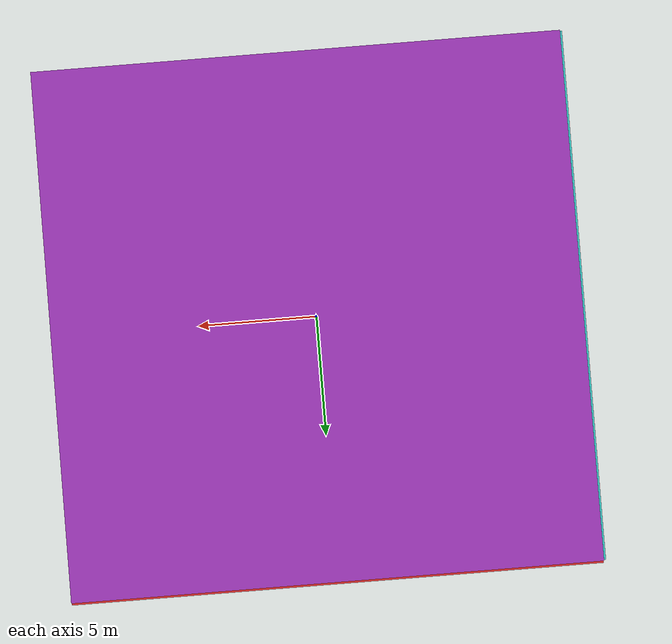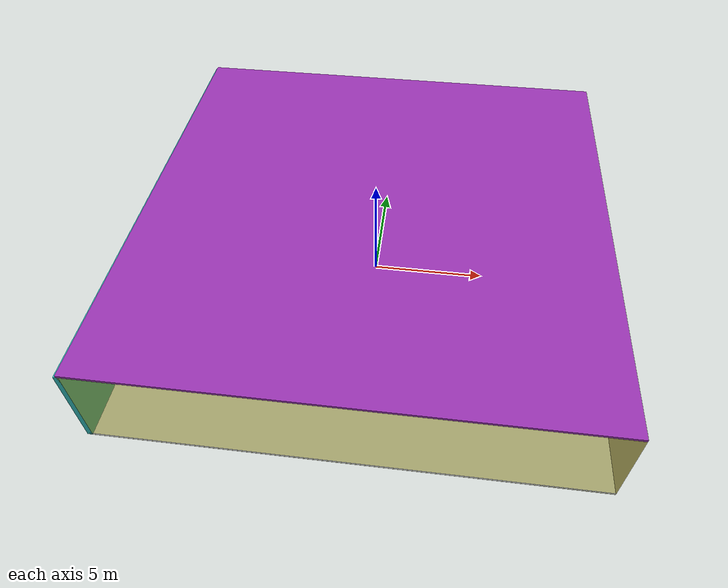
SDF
<sdf version="1.4">
 <world name="default">
  <physics type="ode">
   <max_step_size>0.001</max_step_size>
   <real_time_factor>1</real_time_factor>
   <real_time_update_rate>1000</real_time_update_rate>
   <gravity>0 0 -9.8</gravity>
  </physics>
  <scene><ambient>0.4 0.4 0.4 1</ambient><background>0.7 0.7 0.7 1</background><shadows>1</shadows></scene>
  <model name="Surrounding">
   <static>1</static>
   <link name="Ceiling">
    <collision name="Ceiling_Collision"><geometry><box><size>20 20 0.1</size></box></geometry></collision>
    <visual name="Ceiling_Visual">
     <geometry><box><size>20 20 0.1</size></box></geometry>
     <material>
      <script><uri>file://media/materials/scripts/gazebo.material</uri><name>Gazebo/PurpleGlow</name></script>
     </material>
    </visual>
    <pose>0 0 4.05 0 0 0</pose>
   </link>
   <link name="Wall_South">
    <collision name="Wall_South_Collision">
     <geometry><box><size>20 0 4</size></box></geometry>
     <pose>0 0 2 0 -0 0</pose>
    </collision>
    <visual name="Wall_South_Visual">
     <pose>0 0 2 0 -0 0</pose>
     <geometry><box><size>20 0 4</size></box></geometry>
     <material>
      <script>
       <uri>file://media/materials/scripts/gazebo.material</uri>
       <name>Gazebo/YellowTransparent</name>
      </script>
     </material>
    </visual>
    <velocity_decay><linear>0</linear><angular>0</angular></velocity_decay>
    <pose>0 -10 0 0 -0 0</pose>
   </link>
   <link name="Wall_East">
    <collision name="Wall_21_Collision">
     <geometry><box><size>20 0 4</size></box></geometry>
     <pose>0 0 2 0 -0 0</pose>
    </collision>
    <visual name="Wall_21_Visual">
     <pose>0 0 2 0 -0 0</pose>
     <geometry><box><size>20 0 4</size></box></geometry>
     <material>
      <script><uri>file://media/materials/scripts/gazebo.material</uri><name>Gazebo/PioneerBody</name></script>
     </material>
    </visual>
    <velocity_decay><linear>0</linear><angular>0</angular></velocity_decay>
    <pose>10 0 0 0 -0 1.5708</pose>
   </link>
   <link name="Wall_North">
    <collision name="Wall_22_Collision">
     <geometry><box><size>20 0.2 4</size></box></geometry>
     <pose>0 0 2 0 -0 0</pose>
    </collision>
    <visual name="Wall_22_Visual">
     <pose>0 0 2 0 -0 0</pose>
     <geometry><box><size>20 0.2 4</size></box></geometry>
     <material>
      <script><uri>file://media/materials/scripts/gazebo.material</uri><name>Gazebo/RedBright</name></script>
     </material>
    </visual>
    <velocity_decay><linear>0</linear><angular>0</angular></velocity_decay>
    <pose>0 10 0 0 -0 0</pose>
   </link>
   <link name="Wall_West">
    <collision name="Wall_23_Collision">
     <geometry><box><size>20 0.2 4</size></box></geometry>
     <pose>0 0 2 0 -0 0</pose>
    </collision>
    <visual name="Wall_23_Visual">
     <pose>0 0 2 0 -0 0</pose>
     <geometry><box><size>20 0.2 4</size></box></geometry>
     <material>
      <script><uri>file://media/materials/scripts/gazebo.material</uri><name>Gazebo/TurquoiseGlow</name></script>
     </material>
    </visual>
    <velocity_decay><linear>0</linear><angular>0</angular></velocity_decay>
    <pose>-10 0 0 0 0 -1.5708</pose>
   </link>
   <link name="Ground_link">
    <collision name="collision">
     <pose>0 0 .05 0 -0 0</pose>
     <geometry><box><size>20 20 0.1</size></box></geometry>
    </collision>
    <visual name="visual">
     <pose>0 0 .05 0 -0 0</pose>
     <geometry><box><size>20 20 0.1</size></box></geometry>
     <material>
      <script><uri>file://media/materials/scripts/gazebo.material</uri><name>Gazebo/GreyTransparent</name></script>
     </material>
    </visual>
   </link>
   <static>1</static>
  </model>
  <spherical_coordinates>
   <surface_model>EARTH_WGS84</surface_model>
   <latitude_deg>0</latitude_deg>
   <longitude_deg>0</longitude_deg>
   <elevation>0</elevation>
   <heading_deg>0</heading_deg>
  </spherical_coordinates>
  <light name="lightball_0" type="diffuse">
   <diffuse>0.8 0.8 0.8 1</diffuse>
   <specular>0.2 0.2 0.2 1</specular>
   <attenuation>
    <range>100</range>
    <constant>0.7</constant>
    <linear>0.01</linear>
    <quadratic>0.001</quadratic>
   </attenuation>
   <direction>-0.5 0.1 -0.9</direction>
   <pose>4.793172376 1.72675995609 2.69803829978 0 0 0</pose>
  </light>
  <light name="lightball_1" type="diffuse">
   <diffuse>0.8 0.8 0.8 1</diffuse>
   <specular>0.2 0.2 0.2 1</specular>
   <attenuation>
    <range>100</range>
    <constant>0.7</constant>
    <linear>0.01</linear>
    <quadratic>0.001</quadratic>
   </attenuation>
   <direction>-0.5 0.1 -0.9</direction>
   <pose>3.93427208825 1.59475652148 0.862422805141 0 0 0</pose>
  </light>
  <light name="lightball_2" type="diffuse">
   <diffuse>0.8 0.8 0.8 1</diffuse>
   <specular>0.2 0.2 0.2 1</specular>
   <attenuation>
    <range>100</range>
    <constant>0.7</constant>
    <linear>0.01</linear>
    <quadratic>0.001</quadratic>
   </attenuation>
   <direction>-0.5 0.1 -0.9</direction>
   <pose>2.29314421806 0.539520868824 3.62827051152 0 0 0</pose>
  </light>
  <light name="lightball_3" type="diffuse">
   <diffuse>0.8 0.8 0.8 1</diffuse>
   <specular>0.2 0.2 0.2 1</specular>
   <attenuation>
    <range>100</range>
    <constant>0.7</constant>
    <linear>0.01</linear>
    <quadratic>0.001</quadratic>
   </attenuation>
   <direction>-0.5 0.1 -0.9</direction>
   <pose>6.24716459399 4.17441673221 2.63094384359 0 0 0</pose>
  </light>
  <light name="lightball_4" type="diffuse">
   <diffuse>0.8 0.8 0.8 1</diffuse>
   <specular>0.2 0.2 0.2 1</specular>
   <attenuation>
    <range>100</range>
    <constant>0.7</constant>
    <linear>0.01</linear>
    <quadratic>0.001</quadratic>
   </attenuation>
   <direction>-0.5 0.1 -0.9</direction>
   <pose>-4.3061061438 2.61869484462 3.74081276471 0 0 0</pose>
  </light>
  <light name="lightball_5" type="diffuse">
   <diffuse>0.8 0.8 0.8 1</diffuse>
   <specular>0.2 0.2 0.2 1</specular>
   <attenuation>
    <range>100</range>
    <constant>0.7</constant>
    <linear>0.01</linear>
    <quadratic>0.001</quadratic>
   </attenuation>
   <direction>-0.5 0.1 -0.9</direction>
   <pose>5.20559262003 -2.42249915299 1.33773791377 0 0 0</pose>
  </light>
  <light name="lightball_6" type="diffuse">
   <diffuse>0.8 0.8 0.8 1</diffuse>
   <specular>0.2 0.2 0.2 1</specular>
   <attenuation>
    <range>100</range>
    <constant>0.7</constant>
    <linear>0.01</linear>
    <quadratic>0.001</quadratic>
   </attenuation>
   <direction>-0.5 0.1 -0.9</direction>
   <pose>-0.897603573269 8.5701591679 0.950307192785 0 0 0</pose>
  </light>
  <light name="lightball_7" type="diffuse">
   <diffuse>0.8 0.8 0.8 1</diffuse>
   <specular>0.2 0.2 0.2 1</specular>
   <attenuation>
    <range>100</range>
    <constant>0.7</constant>
    <linear>0.01</linear>
    <quadratic>0.001</quadratic>
   </attenuation>
   <direction>-0.5 0.1 -0.9</direction>
   <pose>-6.97282052902 -7.89723496825 1.07401563178 0 0 0</pose>
  </light>
  <light name="lightball_8" type="diffuse">
   <diffuse>0.8 0.8 0.8 1</diffuse>
   <specular>0.2 0.2 0.2 1</specular>
   <attenuation>
    <range>100</range>
    <constant>0.7</constant>
    <linear>0.01</linear>
    <quadratic>0.001</quadratic>
   </attenuation>
   <direction>-0.5 0.1 -0.9</direction>
   <pose>0.626739197644 0.962965639694 1.63787143127 0 0 0</pose>
  </light>
  <light name="lightball_9" type="diffuse">
   <diffuse>0.8 0.8 0.8 1</diffuse>
   <specular>0.2 0.2 0.2 1</specular>
   <attenuation>
    <range>100</range>
    <constant>0.7</constant>
    <linear>0.01</linear>
    <quadratic>0.001</quadratic>
   </attenuation>
   <direction>-0.5 0.1 -0.9</direction>
   <pose>5.8202555262 -3.58870043637 3.64596116916 0 0 0</pose>
  </light>
  <include><uri>model://cabinet</uri><pose>-8.25496419996 2.03621376936 0 0 0 3.03627943263</pose></include>
  <include><uri>model://cabinet</uri><pose>2.63944918223 -5.12114601699 0 0 0 0.0306466844158</pose></include>
  <include><uri>model://cabinet</uri><pose>2.29200965051 -0.953859580118 0 0 0 1.14106224697</pose></include>
 </world>
</sdf>

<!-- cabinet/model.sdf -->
<sdf version="1.5">
  <model name="cabinet">
    <static>true</static>
    <link name="cabinet_bottom_plate">
      <inertial>
        <pose>0 0 -1 0 0 0</pose>
        <inertia>
          <ixx>2.050000</ixx>
          <ixy>0</ixy>
          <ixz>0</ixz>
          <iyy>2.050000</iyy>
          <iyz>0</iyz>
          <izz>2.050000</izz>
        </inertia>
        <mass>25.000000</mass>
      </inertial>
      <collision name="cabinet_bottom_plate_geom">
        <pose>0 0 0.010000 0 0 0</pose>
        <geometry>
          <box>
            <size>0.450000 0.450000 0.020000</size>
          </box>
        </geometry>
      </collision>
      <visual name="cabinet_bottom_plate_geom_visual">
        <pose>0 0 0.010000 0 0 0</pose>
        <geometry>
          <box>
            <size>0.450000 0.450000 0.020000</size>
          </box>
        </geometry>
        <material>
          <script>
            <uri>model://media/materials/scripts/gazebo.material</uri>
            <name>Gazebo/Wood</name>
          </script>
        </material>
      </visual>
      <collision name="cabinet_bottom_plate_geom_cabinet_back_plate">
        <pose>0.235000 0 0.510000 0 0 0</pose>
        <geometry>
          <box>
            <size>0.020000 0.450000 1.020000</size>
          </box>
        </geometry>
      </collision>
      <visual name="cabinet_bottom_plate_geom_cabinet_back_plate_visual">
        <pose>0.235000 0 0.510000 0 0 0</pose>
        <geometry>
          <box>
            <size>0.020000 0.450000 1.020000</size>
          </box>
        </geometry>
        <material>
          <script>
            <uri>model://media/materials/scripts/gazebo.material</uri>
            <name>Gazebo/Wood</name>
          </script>
        </material>
      </visual>
      <collision name="cabinet_bottom_plate_geom_cabinet_left_plate">
        <pose>0 0.235000 0.510000 0 0 0</pose>
        <geometry>
          <box>
            <size>0.450000 0.020000 1.020000</size>
          </box>
        </geometry>
      </collision>
      <visual name="cabinet_bottom_plate_geom_cabinet_left_plate_visual">
        <pose>0 0.235000 0.510000 0 0 0</pose>
        <geometry>
          <box>
            <size>0.450000 0.020000 1.020000</size>
          </box>
        </geometry>
        <material>
          <script>
            <uri>model://media/materials/scripts/gazebo.material</uri>
            <name>Gazebo/Wood</name>
          </script>
        </material>
      </visual>
      <collision name="cabinet_bottom_plate_geom_cabinet_middle_plate">
        <pose>0 0 0.510000 0 0 0</pose>
        <geometry>
          <box>
            <size>0.450000 0.450000 0.020000</size>
          </box>
        </geometry>
      </collision>
      <visual name="cabinet_bottom_plate_geom_cabinet_middle_plate_visual">
        <pose>0 0 0.510000 0 0 0</pose>
        <geometry>
          <box>
            <size>0.450000 0.450000 0.020000</size>
          </box>
        </geometry>
        <material>
          <script>
            <uri>model://media/materials/scripts/gazebo.material</uri>
            <name>Gazebo/Wood</name>
          </script>
        </material>
      </visual>
      <collision name="cabinet_bottom_plate_geom_cabinet_right_plate">
        <pose>0 -0.235000 0.510000 0 0 0</pose>
        <geometry>
          <box>
            <size>0.450000 0.020000 1.020000</size>
          </box>
        </geometry>
      </collision>
      <visual name="cabinet_bottom_plate_geom_cabinet_right_plate_visual">
        <pose>0 -0.235000 0.510000 0 0 0</pose>
        <geometry>
          <box>
            <size>0.450000 0.020000 1.020000</size>
          </box>
        </geometry>
        <material>
          <script>
            <uri>model://media/materials/scripts/gazebo.material</uri>
            <name>Gazebo/Wood</name>
          </script>
        </material>
      </visual>
      <collision name="cabinet_bottom_plate_geom_cabinet_top_plate">
        <pose>0 0 1.010000 0 0 0</pose>
        <geometry>
          <box>
            <size>0.450000 0.450000 0.020000</size>
          </box>
        </geometry>
      </collision>
      <visual name="cabinet_bottom_plate_geom_cabinet_top_plate_visual">
        <pose>0 0 1.010000 0 0 0</pose>
        <geometry>
          <box>
            <size>0.450000 0.450000 0.020000</size>
          </box>
        </geometry>
        <material>
          <script>
            <uri>model://media/materials/scripts/gazebo.material</uri>
            <name>Gazebo/Wood</name>
          </script>
        </material>
      </visual>
    </link>
  </model>
</sdf>
